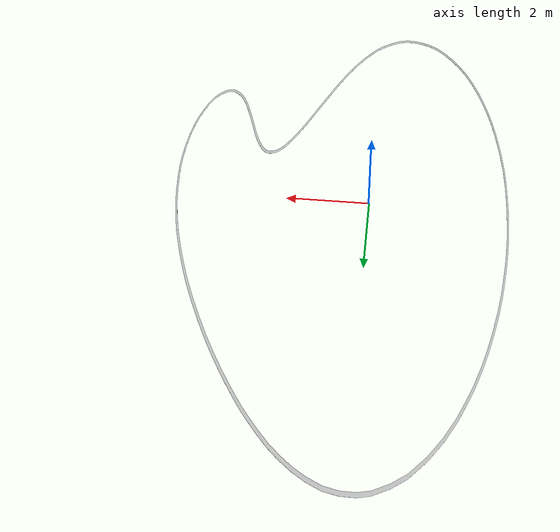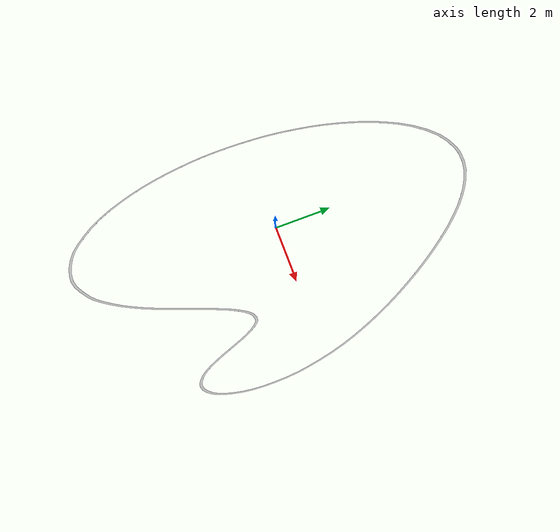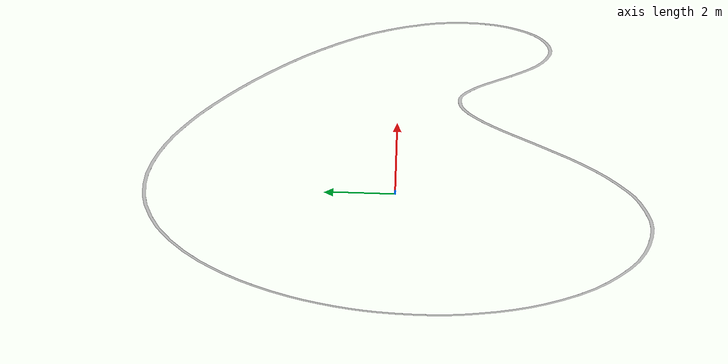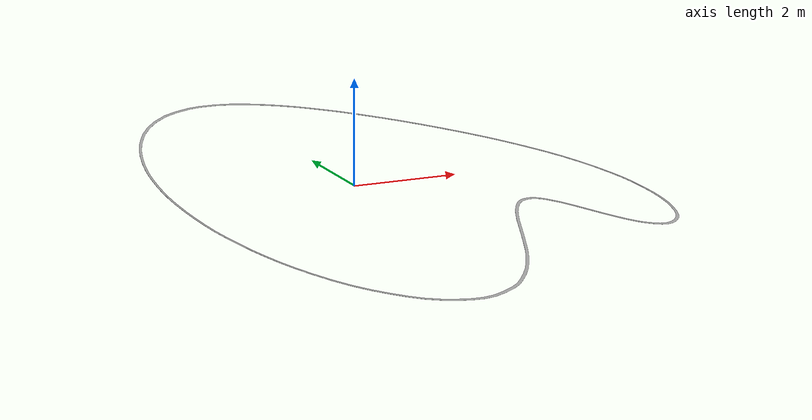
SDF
<?xml version="1.0" ?>
<sdf version="1.5">
  <model name="Road">
    <static>true</static>
    <link name="link">
      <collision name="collision">
        <pose frame=''>0 0 -0.1 0 0 0</pose>
        <geometry>
          <mesh>
            <uri>model://road/meshes/road.dae</uri>
            <scale>0.2 0.5 0.15</scale>
          </mesh>
        </geometry>
      </collision>
      <visual name="visual">
        <pose frame=''>0 0 -0.1 0 0 0</pose>
        <geometry>
          <mesh>
            <uri>model://road/meshes/road.dae</uri>
            <scale>0.2 0.5 0.15</scale>
          </mesh>
        </geometry>
        <material>
          <script>
            <uri>model://road/materials/scripts</uri>
            <uri>model://road/materials/textures</uri>
            <name>Road/Diffuse</name>
          </script>
        </material>
      </visual>
    </link>
  </model>
</sdf>
